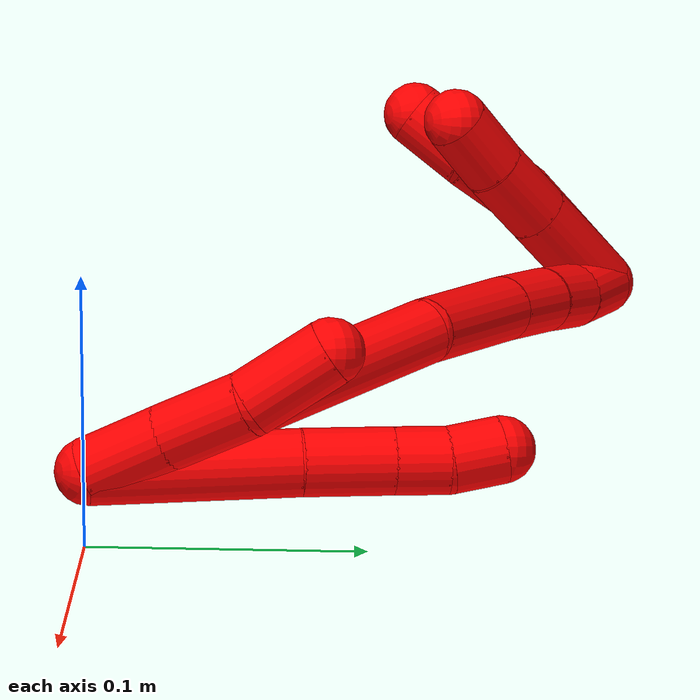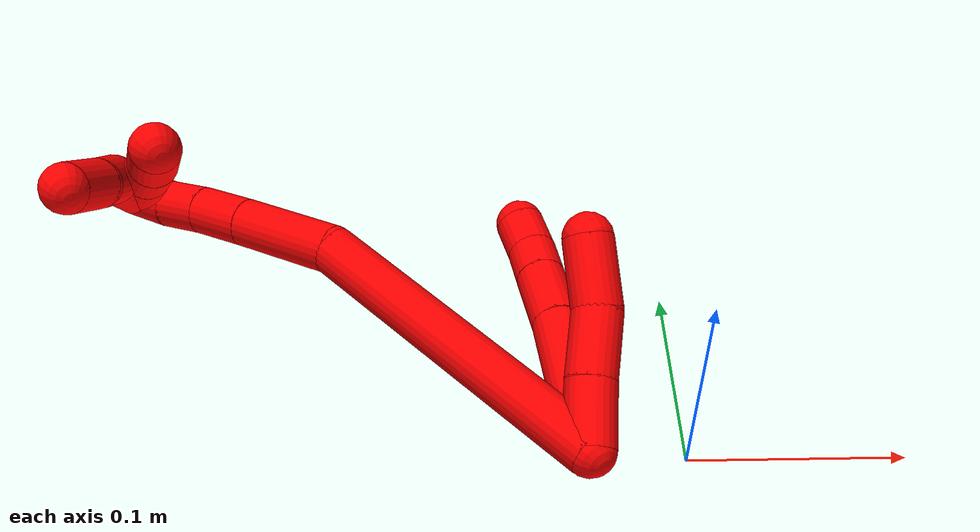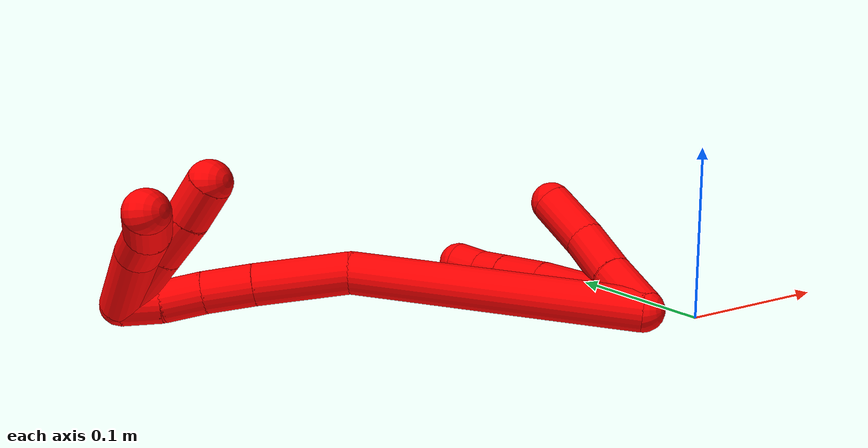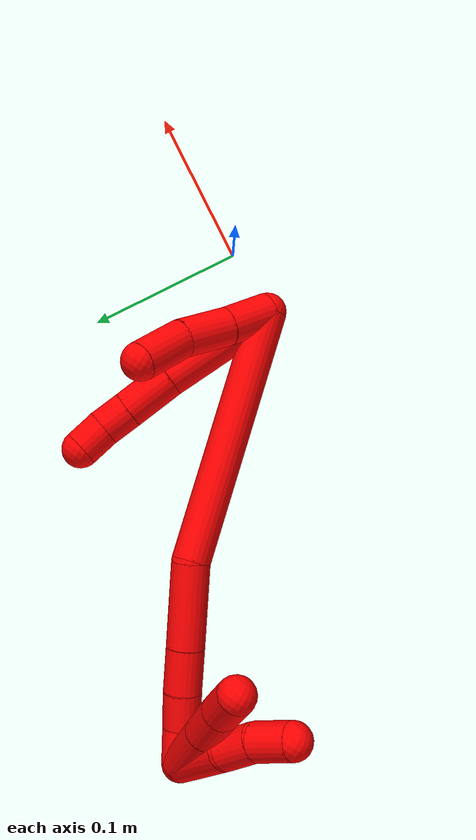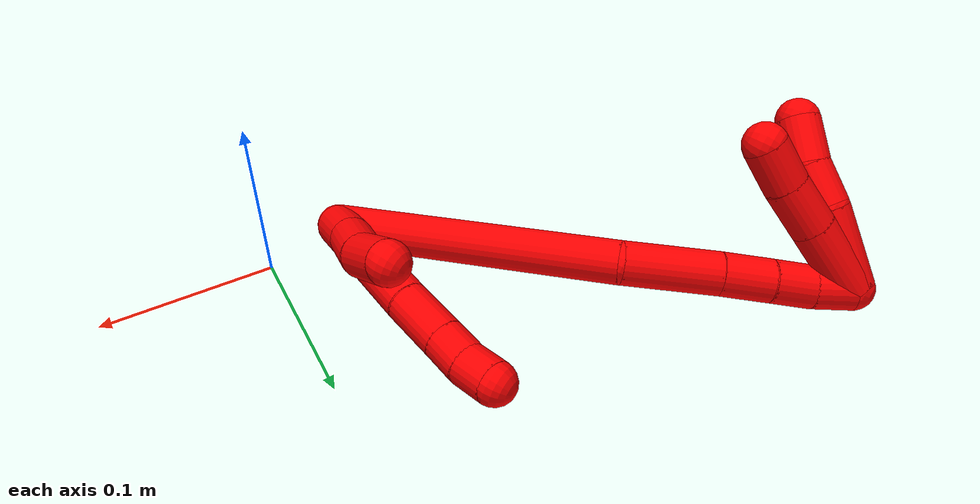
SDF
<sdf version="1.7">
 <world name="default">
  <model name="2">
   <static>0</static>
   <link name="2">
    <collision name="collision-cylinder-e_1_2_8">
     <pose>0.009482 -0.011724 0.035226 0.3213 0.250046 0.040726</pose>
     <geometry><cylinder><radius>0.0125</radius><length>0.076635</length></cylinder></geometry>
     <surface>
      <friction><ode><mu>1.16</mu><mu2>1.16</mu2><slip1>0</slip1><slip2>0</slip2></ode></friction>
      <contact><ode><kp>1e+06</kp><kd>1</kd><max_vel>0</max_vel><min_depth>0.001</min_depth></ode></contact>
     </surface>
    </collision>
    <visual name="visual-cylinder-e_1_2_8">
     <pose>0.009482 -0.011724 0.035226 0.3213 0.250046 0.040726</pose>
     <geometry><cylinder><radius>0.0125</radius><length>0.076635</length></cylinder></geometry>
     <material><ambient>1 0 0 1</ambient></material>
    </visual>
    <collision name="collision-cylinder-e_2_8_9">
     <pose>0.02268 -0.027467 0.086206 0.249756 0.224755 0.028331</pose>
     <geometry><cylinder><radius>0.0125</radius><length>0.033357</length></cylinder></geometry>
     <surface>
      <friction><ode><mu>1.16</mu><mu2>1.16</mu2><slip1>0</slip1><slip2>0</slip2></ode></friction>
      <contact><ode><kp>1e+06</kp><kd>1</kd><max_vel>0</max_vel><min_depth>0.001</min_depth></ode></contact>
     </surface>
    </collision>
    <visual name="visual-cylinder-e_2_8_9">
     <pose>0.02268 -0.027467 0.086206 0.249756 0.224755 0.028331</pose>
     <geometry><cylinder><radius>0.0125</radius><length>0.033357</length></cylinder></geometry>
     <material><ambient>1 0 0 1</ambient></material>
    </visual>
    <collision name="collision-cylinder-e_3_9_10">
     <pose>0.028755 -0.033928 0.111369 0.253898 0.237985 0.030517</pose>
     <geometry><cylinder><radius>0.0125</radius><length>0.020004</length></cylinder></geometry>
     <surface>
      <friction><ode><mu>1.16</mu><mu2>1.16</mu2><slip1>0</slip1><slip2>0</slip2></ode></friction>
      <contact><ode><kp>1e+06</kp><kd>1</kd><max_vel>0</max_vel><min_depth>0.001</min_depth></ode></contact>
     </surface>
    </collision>
    <visual name="visual-cylinder-e_3_9_10">
     <pose>0.028755 -0.033928 0.111369 0.253898 0.237985 0.030517</pose>
     <geometry><cylinder><radius>0.0125</radius><length>0.020004</length></cylinder></geometry>
     <material><ambient>1 0 0 1</ambient></material>
    </visual>
    <collision name="collision-cylinder-e_4_10_6">
     <pose>0.031689 -0.039571 0.130236 0.32647 0.057624 0.009493</pose>
     <geometry><cylinder><radius>0.0125</radius><length>0.020004</length></cylinder></geometry>
     <surface>
      <friction><ode><mu>1.16</mu><mu2>1.16</mu2><slip1>0</slip1><slip2>0</slip2></ode></friction>
      <contact><ode><kp>1e+06</kp><kd>1</kd><max_vel>0</max_vel><min_depth>0.001</min_depth></ode></contact>
     </surface>
    </collision>
    <visual name="visual-cylinder-e_4_10_6">
     <pose>0.031689 -0.039571 0.130236 0.32647 0.057624 0.009493</pose>
     <geometry><cylinder><radius>0.0125</radius><length>0.020004</length></cylinder></geometry>
     <material><ambient>1 0 0 1</ambient></material>
    </visual>
    <collision name="collision-cylinder-e_1_2_11">
     <pose>0.002121 -0.011252 0.010967 0.79825 0.134158 0.056653</pose>
     <geometry><cylinder><radius>0.0125</radius><length>0.03171</length></cylinder></geometry>
     <surface>
      <friction><ode><mu>1.16</mu><mu2>1.16</mu2><slip1>0</slip1><slip2>0</slip2></ode></friction>
      <contact><ode><kp>1e+06</kp><kd>1</kd><max_vel>0</max_vel><min_depth>0.001</min_depth></ode></contact>
     </surface>
    </collision>
    <visual name="visual-cylinder-e_1_2_11">
     <pose>0.002121 -0.011252 0.010967 0.79825 0.134158 0.056653</pose>
     <geometry><cylinder><radius>0.0125</radius><length>0.03171</length></cylinder></geometry>
     <material><ambient>1 0 0 1</ambient></material>
    </visual>
    <collision name="collision-cylinder-e_2_11_12">
     <pose>0.00741 -0.034859 0.032828 0.848086 0.190067 0.086008</pose>
     <geometry><cylinder><radius>0.0125</radius><length>0.033548</length></cylinder></geometry>
     <surface>
      <friction><ode><mu>1.16</mu><mu2>1.16</mu2><slip1>0</slip1><slip2>0</slip2></ode></friction>
      <contact><ode><kp>1e+06</kp><kd>1</kd><max_vel>0</max_vel><min_depth>0.001</min_depth></ode></contact>
     </surface>
    </collision>
    <visual name="visual-cylinder-e_2_11_12">
     <pose>0.00741 -0.034859 0.032828 0.848086 0.190067 0.086008</pose>
     <geometry><cylinder><radius>0.0125</radius><length>0.033548</length></cylinder></geometry>
     <material><ambient>1 0 0 1</ambient></material>
    </visual>
    <collision name="collision-cylinder-e_3_12_5">
     <pose>0.009594 -0.059558 0.055905 0.792055 -0.056738 -0.023728</pose>
     <geometry><cylinder><radius>0.0125</radius><length>0.034742</length></cylinder></geometry>
     <surface>
      <friction><ode><mu>1.16</mu><mu2>1.16</mu2><slip1>0</slip1><slip2>0</slip2></ode></friction>
      <contact><ode><kp>1e+06</kp><kd>1</kd><max_vel>0</max_vel><min_depth>0.001</min_depth></ode></contact>
     </surface>
    </collision>
    <visual name="visual-cylinder-e_3_12_5">
     <pose>0.009594 -0.059558 0.055905 0.792055 -0.056738 -0.023728</pose>
     <geometry><cylinder><radius>0.0125</radius><length>0.034742</length></cylinder></geometry>
     <material><ambient>1 0 0 1</ambient></material>
    </visual>
    <collision name="collision-cylinder-e_1_2_13">
     <pose>-0.029873 -0.001569 0.078758 0.019919 -0.362476 -0.00365</pose>
     <geometry><cylinder><radius>0.0125</radius><length>0.168496</length></cylinder></geometry>
     <surface>
      <friction><ode><mu>1.16</mu><mu2>1.16</mu2><slip1>0</slip1><slip2>0</slip2></ode></friction>
      <contact><ode><kp>1e+06</kp><kd>1</kd><max_vel>0</max_vel><min_depth>0.001</min_depth></ode></contact>
     </surface>
    </collision>
    <visual name="visual-cylinder-e_1_2_13">
     <pose>-0.029873 -0.001569 0.078758 0.019919 -0.362476 -0.00365</pose>
     <geometry><cylinder><radius>0.0125</radius><length>0.168496</length></cylinder></geometry>
     <material><ambient>1 0 0 1</ambient></material>
    </visual>
    <collision name="collision-cylinder-e_2_13_14">
     <pose>-0.071434 0.004335 0.181444 -0.30272 -0.436276 0.067594</pose>
     <geometry><cylinder><radius>0.0125</radius><length>0.055316</length></cylinder></geometry>
     <surface>
      <friction><ode><mu>1.16</mu><mu2>1.16</mu2><slip1>0</slip1><slip2>0</slip2></ode></friction>
      <contact><ode><kp>1e+06</kp><kd>1</kd><max_vel>0</max_vel><min_depth>0.001</min_depth></ode></contact>
     </surface>
    </collision>
    <visual name="visual-cylinder-e_2_13_14">
     <pose>-0.071434 0.004335 0.181444 -0.30272 -0.436276 0.067594</pose>
     <geometry><cylinder><radius>0.0125</radius><length>0.055316</length></cylinder></geometry>
     <material><ambient>1 0 0 1</ambient></material>
    </visual>
    <collision name="collision-cylinder-e_3_14_15">
     <pose>-0.088882 0.016074 0.217928 -0.327519 -0.409746 0.068643</pose>
     <geometry><cylinder><radius>0.0125</radius><length>0.028918</length></cylinder></geometry>
     <surface>
      <friction><ode><mu>1.16</mu><mu2>1.16</mu2><slip1>0</slip1><slip2>0</slip2></ode></friction>
      <contact><ode><kp>1e+06</kp><kd>1</kd><max_vel>0</max_vel><min_depth>0.001</min_depth></ode></contact>
     </surface>
    </collision>
    <visual name="visual-cylinder-e_3_14_15">
     <pose>-0.088882 0.016074 0.217928 -0.327519 -0.409746 0.068643</pose>
     <geometry><cylinder><radius>0.0125</radius><length>0.028918</length></cylinder></geometry>
     <material><ambient>1 0 0 1</ambient></material>
    </visual>
    <collision name="collision-cylinder-e_4_15_16">
     <pose>-0.099463 0.024694 0.24064 -0.40503 -0.411485 0.08565</pose>
     <geometry><cylinder><radius>0.0125</radius><length>0.024109</length></cylinder></geometry>
     <surface>
      <friction><ode><mu>1.16</mu><mu2>1.16</mu2><slip1>0</slip1><slip2>0</slip2></ode></friction>
      <contact><ode><kp>1e+06</kp><kd>1</kd><max_vel>0</max_vel><min_depth>0.001</min_depth></ode></contact>
     </surface>
    </collision>
    <visual name="visual-cylinder-e_4_15_16">
     <pose>-0.099463 0.024694 0.24064 -0.40503 -0.411485 0.08565</pose>
     <geometry><cylinder><radius>0.0125</radius><length>0.024109</length></cylinder></geometry>
     <material><ambient>1 0 0 1</ambient></material>
    </visual>
    <collision name="collision-cylinder-e_5_16_1">
     <pose>-0.109905 0.031711 0.260563 -0.266115 -0.506695 0.069282</pose>
     <geometry><cylinder><radius>0.0125</radius><length>0.023161</length></cylinder></geometry>
     <surface>
      <friction><ode><mu>1.16</mu><mu2>1.16</mu2><slip1>0</slip1><slip2>0</slip2></ode></friction>
      <contact><ode><kp>1e+06</kp><kd>1</kd><max_vel>0</max_vel><min_depth>0.001</min_depth></ode></contact>
     </surface>
    </collision>
    <visual name="visual-cylinder-e_5_16_1">
     <pose>-0.109905 0.031711 0.260563 -0.266115 -0.506695 0.069282</pose>
     <geometry><cylinder><radius>0.0125</radius><length>0.023161</length></cylinder></geometry>
     <material><ambient>1 0 0 1</ambient></material>
    </visual>
    <collision name="collision-cylinder-e_1_1_17">
     <pose>-0.130122 0.024381 0.254142 2.58861 -0.654459 -1.749</pose>
     <geometry><cylinder><radius>0.0125</radius><length>0.047961</length></cylinder></geometry>
     <surface>
      <friction><ode><mu>1.16</mu><mu2>1.16</mu2><slip1>0</slip1><slip2>0</slip2></ode></friction>
      <contact><ode><kp>1e+06</kp><kd>1</kd><max_vel>0</max_vel><min_depth>0.001</min_depth></ode></contact>
     </surface>
    </collision>
    <visual name="visual-cylinder-e_1_1_17">
     <pose>-0.130122 0.024381 0.254142 2.58861 -0.654459 -1.749</pose>
     <geometry><cylinder><radius>0.0125</radius><length>0.047961</length></cylinder></geometry>
     <material><ambient>1 0 0 1</ambient></material>
    </visual>
    <collision name="collision-cylinder-e_2_17_18">
     <pose>-0.152408 0.011927 0.228214 2.89402 -0.65327 -2.43761</pose>
     <geometry><cylinder><radius>0.0125</radius><length>0.025299</length></cylinder></geometry>
     <surface>
      <friction><ode><mu>1.16</mu><mu2>1.16</mu2><slip1>0</slip1><slip2>0</slip2></ode></friction>
      <contact><ode><kp>1e+06</kp><kd>1</kd><max_vel>0</max_vel><min_depth>0.001</min_depth></ode></contact>
     </surface>
    </collision>
    <visual name="visual-cylinder-e_2_17_18">
     <pose>-0.152408 0.011927 0.228214 2.89402 -0.65327 -2.43761</pose>
     <geometry><cylinder><radius>0.0125</radius><length>0.025299</length></cylinder></geometry>
     <material><ambient>1 0 0 1</ambient></material>
    </visual>
    <collision name="collision-cylinder-e_3_18_4">
     <pose>-0.170384 0.008175 0.210033 2.98996 -0.877991 -2.82083</pose>
     <geometry><cylinder><radius>0.0125</radius><length>0.026741</length></cylinder></geometry>
     <surface>
      <friction><ode><mu>1.16</mu><mu2>1.16</mu2><slip1>0</slip1><slip2>0</slip2></ode></friction>
      <contact><ode><kp>1e+06</kp><kd>1</kd><max_vel>0</max_vel><min_depth>0.001</min_depth></ode></contact>
     </surface>
    </collision>
    <visual name="visual-cylinder-e_3_18_4">
     <pose>-0.170384 0.008175 0.210033 2.98996 -0.877991 -2.82083</pose>
     <geometry><cylinder><radius>0.0125</radius><length>0.026741</length></cylinder></geometry>
     <material><ambient>1 0 0 1</ambient></material>
    </visual>
    <collision name="collision-cylinder-e_1_1_19">
     <pose>-0.122558 0.021478 0.25333 2.49269 -0.318385 -0.890731</pose>
     <geometry><cylinder><radius>0.0125</radius><length>0.044937</length></cylinder></geometry>
     <surface>
      <friction><ode><mu>1.16</mu><mu2>1.16</mu2><slip1>0</slip1><slip2>0</slip2></ode></friction>
      <contact><ode><kp>1e+06</kp><kd>1</kd><max_vel>0</max_vel><min_depth>0.001</min_depth></ode></contact>
     </surface>
    </collision>
    <visual name="visual-cylinder-e_1_1_19">
     <pose>-0.122558 0.021478 0.25333 2.49269 -0.318385 -0.890731</pose>
     <geometry><cylinder><radius>0.0125</radius><length>0.044937</length></cylinder></geometry>
     <material><ambient>1 0 0 1</ambient></material>
    </visual>
    <collision name="collision-cylinder-e_2_19_20">
     <pose>-0.134135 0.000228 0.225256 2.4952 -0.316578 -0.889467</pose>
     <geometry><cylinder><radius>0.0125</radius><length>0.029192</length></cylinder></geometry>
     <surface>
      <friction><ode><mu>1.16</mu><mu2>1.16</mu2><slip1>0</slip1><slip2>0</slip2></ode></friction>
      <contact><ode><kp>1e+06</kp><kd>1</kd><max_vel>0</max_vel><min_depth>0.001</min_depth></ode></contact>
     </surface>
    </collision>
    <visual name="visual-cylinder-e_2_19_20">
     <pose>-0.134135 0.000228 0.225256 2.4952 -0.316578 -0.889467</pose>
     <geometry><cylinder><radius>0.0125</radius><length>0.029192</length></cylinder></geometry>
     <material><ambient>1 0 0 1</ambient></material>
    </visual>
    <collision name="collision-cylinder-e_3_20_3">
     <pose>-0.143517 -0.015808 0.204968 2.44675 -0.383291 -0.983791</pose>
     <geometry><cylinder><radius>0.0125</radius><length>0.025871</length></cylinder></geometry>
     <surface>
      <friction><ode><mu>1.16</mu><mu2>1.16</mu2><slip1>0</slip1><slip2>0</slip2></ode></friction>
      <contact><ode><kp>1e+06</kp><kd>1</kd><max_vel>0</max_vel><min_depth>0.001</min_depth></ode></contact>
     </surface>
    </collision>
    <visual name="visual-cylinder-e_3_20_3">
     <pose>-0.143517 -0.015808 0.204968 2.44675 -0.383291 -0.983791</pose>
     <geometry><cylinder><radius>0.0125</radius><length>0.025871</length></cylinder></geometry>
     <material><ambient>1 0 0 1</ambient></material>
    </visual>
    <collision name="collision-sphere-3">
     <pose>-0.148354 -0.023489 0.195752 0 -0 0</pose>
     <geometry><sphere><radius>0.0125</radius></sphere></geometry>
     <surface>
      <friction><ode><mu>1.16</mu><mu2>1.16</mu2><slip1>0</slip1><slip2>0</slip2></ode></friction>
      <contact><ode><kp>1e+06</kp><kd>1</kd><max_vel>0</max_vel><min_depth>0.001</min_depth></ode></contact>
     </surface>
    </collision>
    <visual name="visual-sphere-3">
     <pose>-0.148354 -0.023489 0.195752 0 -0 0</pose>
     <geometry><sphere><radius>0.0125</radius></sphere></geometry>
     <material><ambient>1 0 0 1</ambient></material>
    </visual>
    <collision name="collision-sphere-20">
     <pose>-0.138679 -0.008127 0.214183 0 -0 0</pose>
     <geometry><sphere><radius>0.0125</radius></sphere></geometry>
     <surface>
      <friction><ode><mu>1.16</mu><mu2>1.16</mu2><slip1>0</slip1><slip2>0</slip2></ode></friction>
      <contact><ode><kp>1e+06</kp><kd>1</kd><max_vel>0</max_vel><min_depth>0.001</min_depth></ode></contact>
     </surface>
    </collision>
    <visual name="visual-sphere-20">
     <pose>-0.138679 -0.008127 0.214183 0 -0 0</pose>
     <geometry><sphere><radius>0.0125</radius></sphere></geometry>
     <material><ambient>1 0 0 1</ambient></material>
    </visual>
    <collision name="collision-sphere-19">
     <pose>-0.129591 0.008582 0.236328 0 -0 0</pose>
     <geometry><sphere><radius>0.0125</radius></sphere></geometry>
     <surface>
      <friction><ode><mu>1.16</mu><mu2>1.16</mu2><slip1>0</slip1><slip2>0</slip2></ode></friction>
      <contact><ode><kp>1e+06</kp><kd>1</kd><max_vel>0</max_vel><min_depth>0.001</min_depth></ode></contact>
     </surface>
    </collision>
    <visual name="visual-sphere-19">
     <pose>-0.129591 0.008582 0.236328 0 -0 0</pose>
     <geometry><sphere><radius>0.0125</radius></sphere></geometry>
     <material><ambient>1 0 0 1</ambient></material>
    </visual>
    <collision name="collision-sphere-11">
     <pose>0.004241 -0.022505 0.021933 0 -0 0</pose>
     <geometry><sphere><radius>0.0125</radius></sphere></geometry>
     <surface>
      <friction><ode><mu>1.16</mu><mu2>1.16</mu2><slip1>0</slip1><slip2>0</slip2></ode></friction>
      <contact><ode><kp>1e+06</kp><kd>1</kd><max_vel>0</max_vel><min_depth>0.001</min_depth></ode></contact>
     </surface>
    </collision>
    <visual name="visual-sphere-11">
     <pose>0.004241 -0.022505 0.021933 0 -0 0</pose>
     <geometry><sphere><radius>0.0125</radius></sphere></geometry>
     <material><ambient>1 0 0 1</ambient></material>
    </visual>
    <collision name="collision-sphere-6">
     <pose>0.032265 -0.042774 0.139694 0 -0 0</pose>
     <geometry><sphere><radius>0.0125</radius></sphere></geometry>
     <surface>
      <friction><ode><mu>1.16</mu><mu2>1.16</mu2><slip1>0</slip1><slip2>0</slip2></ode></friction>
      <contact><ode><kp>1e+06</kp><kd>1</kd><max_vel>0</max_vel><min_depth>0.001</min_depth></ode></contact>
     </surface>
    </collision>
    <visual name="visual-sphere-6">
     <pose>0.032265 -0.042774 0.139694 0 -0 0</pose>
     <geometry><sphere><radius>0.0125</radius></sphere></geometry>
     <material><ambient>1 0 0 1</ambient></material>
    </visual>
    <collision name="collision-sphere-10">
     <pose>0.031113 -0.036369 0.120778 0 -0 0</pose>
     <geometry><sphere><radius>0.0125</radius></sphere></geometry>
     <surface>
      <friction><ode><mu>1.16</mu><mu2>1.16</mu2><slip1>0</slip1><slip2>0</slip2></ode></friction>
      <contact><ode><kp>1e+06</kp><kd>1</kd><max_vel>0</max_vel><min_depth>0.001</min_depth></ode></contact>
     </surface>
    </collision>
    <visual name="visual-sphere-10">
     <pose>0.031113 -0.036369 0.120778 0 -0 0</pose>
     <geometry><sphere><radius>0.0125</radius></sphere></geometry>
     <material><ambient>1 0 0 1</ambient></material>
    </visual>
    <collision name="collision-sphere-9">
     <pose>0.026397 -0.031486 0.101961 0 -0 0</pose>
     <geometry><sphere><radius>0.0125</radius></sphere></geometry>
     <surface>
      <friction><ode><mu>1.16</mu><mu2>1.16</mu2><slip1>0</slip1><slip2>0</slip2></ode></friction>
      <contact><ode><kp>1e+06</kp><kd>1</kd><max_vel>0</max_vel><min_depth>0.001</min_depth></ode></contact>
     </surface>
    </collision>
    <visual name="visual-sphere-9">
     <pose>0.026397 -0.031486 0.101961 0 -0 0</pose>
     <geometry><sphere><radius>0.0125</radius></sphere></geometry>
     <material><ambient>1 0 0 1</ambient></material>
    </visual>
    <collision name="collision-sphere-2">
     <geometry><sphere><radius>0.0125</radius></sphere></geometry>
     <surface>
      <friction><ode><mu>1.16</mu><mu2>1.16</mu2><slip1>0</slip1><slip2>0</slip2></ode></friction>
      <contact><ode><kp>1e+06</kp><kd>1</kd><max_vel>0</max_vel><min_depth>0.001</min_depth></ode></contact>
     </surface>
    </collision>
    <visual name="visual-sphere-2">
     <geometry><sphere><radius>0.0125</radius></sphere></geometry>
     <material><ambient>1 0 0 1</ambient></material>
    </visual>
    <collision name="collision-sphere-8">
     <pose>0.018963 -0.023449 0.070452 0 -0 0</pose>
     <geometry><sphere><radius>0.0125</radius></sphere></geometry>
     <surface>
      <friction><ode><mu>1.16</mu><mu2>1.16</mu2><slip1>0</slip1><slip2>0</slip2></ode></friction>
      <contact><ode><kp>1e+06</kp><kd>1</kd><max_vel>0</max_vel><min_depth>0.001</min_depth></ode></contact>
     </surface>
    </collision>
    <visual name="visual-sphere-8">
     <pose>0.018963 -0.023449 0.070452 0 -0 0</pose>
     <geometry><sphere><radius>0.0125</radius></sphere></geometry>
     <material><ambient>1 0 0 1</ambient></material>
    </visual>
    <collision name="collision-sphere-12">
     <pose>0.010579 -0.047213 0.043723 0 -0 0</pose>
     <geometry><sphere><radius>0.0125</radius></sphere></geometry>
     <surface>
      <friction><ode><mu>1.16</mu><mu2>1.16</mu2><slip1>0</slip1><slip2>0</slip2></ode></friction>
      <contact><ode><kp>1e+06</kp><kd>1</kd><max_vel>0</max_vel><min_depth>0.001</min_depth></ode></contact>
     </surface>
    </collision>
    <visual name="visual-sphere-12">
     <pose>0.010579 -0.047213 0.043723 0 -0 0</pose>
     <geometry><sphere><radius>0.0125</radius></sphere></geometry>
     <material><ambient>1 0 0 1</ambient></material>
    </visual>
    <collision name="collision-sphere-5">
     <pose>0.008609 -0.071903 0.068086 0 -0 0</pose>
     <geometry><sphere><radius>0.0125</radius></sphere></geometry>
     <surface>
      <friction><ode><mu>1.16</mu><mu2>1.16</mu2><slip1>0</slip1><slip2>0</slip2></ode></friction>
      <contact><ode><kp>1e+06</kp><kd>1</kd><max_vel>0</max_vel><min_depth>0.001</min_depth></ode></contact>
     </surface>
    </collision>
    <visual name="visual-sphere-5">
     <pose>0.008609 -0.071903 0.068086 0 -0 0</pose>
     <geometry><sphere><radius>0.0125</radius></sphere></geometry>
     <material><ambient>1 0 0 1</ambient></material>
    </visual>
    <collision name="collision-sphere-13">
     <pose>-0.059747 -0.003138 0.157516 0 -0 0</pose>
     <geometry><sphere><radius>0.0125</radius></sphere></geometry>
     <surface>
      <friction><ode><mu>1.16</mu><mu2>1.16</mu2><slip1>0</slip1><slip2>0</slip2></ode></friction>
      <contact><ode><kp>1e+06</kp><kd>1</kd><max_vel>0</max_vel><min_depth>0.001</min_depth></ode></contact>
     </surface>
    </collision>
    <visual name="visual-sphere-13">
     <pose>-0.059747 -0.003138 0.157516 0 -0 0</pose>
     <geometry><sphere><radius>0.0125</radius></sphere></geometry>
     <material><ambient>1 0 0 1</ambient></material>
    </visual>
    <collision name="collision-sphere-14">
     <pose>-0.083122 0.011808 0.205371 0 -0 0</pose>
     <geometry><sphere><radius>0.0125</radius></sphere></geometry>
     <surface>
      <friction><ode><mu>1.16</mu><mu2>1.16</mu2><slip1>0</slip1><slip2>0</slip2></ode></friction>
      <contact><ode><kp>1e+06</kp><kd>1</kd><max_vel>0</max_vel><min_depth>0.001</min_depth></ode></contact>
     </surface>
    </collision>
    <visual name="visual-sphere-14">
     <pose>-0.083122 0.011808 0.205371 0 -0 0</pose>
     <geometry><sphere><radius>0.0125</radius></sphere></geometry>
     <material><ambient>1 0 0 1</ambient></material>
    </visual>
    <collision name="collision-sphere-15">
     <pose>-0.094642 0.020341 0.230485 0 -0 0</pose>
     <geometry><sphere><radius>0.0125</radius></sphere></geometry>
     <surface>
      <friction><ode><mu>1.16</mu><mu2>1.16</mu2><slip1>0</slip1><slip2>0</slip2></ode></friction>
      <contact><ode><kp>1e+06</kp><kd>1</kd><max_vel>0</max_vel><min_depth>0.001</min_depth></ode></contact>
     </surface>
    </collision>
    <visual name="visual-sphere-15">
     <pose>-0.094642 0.020341 0.230485 0 -0 0</pose>
     <geometry><sphere><radius>0.0125</radius></sphere></geometry>
     <material><ambient>1 0 0 1</ambient></material>
    </visual>
    <collision name="collision-sphere-16">
     <pose>-0.104285 0.029048 0.250794 0 -0 0</pose>
     <geometry><sphere><radius>0.0125</radius></sphere></geometry>
     <surface>
      <friction><ode><mu>1.16</mu><mu2>1.16</mu2><slip1>0</slip1><slip2>0</slip2></ode></friction>
      <contact><ode><kp>1e+06</kp><kd>1</kd><max_vel>0</max_vel><min_depth>0.001</min_depth></ode></contact>
     </surface>
    </collision>
    <visual name="visual-sphere-16">
     <pose>-0.104285 0.029048 0.250794 0 -0 0</pose>
     <geometry><sphere><radius>0.0125</radius></sphere></geometry>
     <material><ambient>1 0 0 1</ambient></material>
    </visual>
    <collision name="collision-sphere-1">
     <pose>-0.115525 0.034374 0.270332 0 -0 0</pose>
     <geometry><sphere><radius>0.0125</radius></sphere></geometry>
     <surface>
      <friction><ode><mu>1.16</mu><mu2>1.16</mu2><slip1>0</slip1><slip2>0</slip2></ode></friction>
      <contact><ode><kp>1e+06</kp><kd>1</kd><max_vel>0</max_vel><min_depth>0.001</min_depth></ode></contact>
     </surface>
    </collision>
    <visual name="visual-sphere-1">
     <pose>-0.115525 0.034374 0.270332 0 -0 0</pose>
     <geometry><sphere><radius>0.0125</radius></sphere></geometry>
     <material><ambient>1 0 0 1</ambient></material>
    </visual>
    <collision name="collision-sphere-18">
     <pose>-0.160096 0.009465 0.218475 0 -0 0</pose>
     <geometry><sphere><radius>0.0125</radius></sphere></geometry>
     <surface>
      <friction><ode><mu>1.16</mu><mu2>1.16</mu2><slip1>0</slip1><slip2>0</slip2></ode></friction>
      <contact><ode><kp>1e+06</kp><kd>1</kd><max_vel>0</max_vel><min_depth>0.001</min_depth></ode></contact>
     </surface>
    </collision>
    <visual name="visual-sphere-18">
     <pose>-0.160096 0.009465 0.218475 0 -0 0</pose>
     <geometry><sphere><radius>0.0125</radius></sphere></geometry>
     <material><ambient>1 0 0 1</ambient></material>
    </visual>
    <collision name="collision-sphere-17">
     <pose>-0.14472 0.014388 0.237952 0 -0 0</pose>
     <geometry><sphere><radius>0.0125</radius></sphere></geometry>
     <surface>
      <friction><ode><mu>1.16</mu><mu2>1.16</mu2><slip1>0</slip1><slip2>0</slip2></ode></friction>
      <contact><ode><kp>1e+06</kp><kd>1</kd><max_vel>0</max_vel><min_depth>0.001</min_depth></ode></contact>
     </surface>
    </collision>
    <visual name="visual-sphere-17">
     <pose>-0.14472 0.014388 0.237952 0 -0 0</pose>
     <geometry><sphere><radius>0.0125</radius></sphere></geometry>
     <material><ambient>1 0 0 1</ambient></material>
    </visual>
    <collision name="collision-sphere-4">
     <pose>-0.180672 0.006885 0.201592 0 -0 0</pose>
     <geometry><sphere><radius>0.0125</radius></sphere></geometry>
     <surface>
      <friction><ode><mu>1.16</mu><mu2>1.16</mu2><slip1>0</slip1><slip2>0</slip2></ode></friction>
      <contact><ode><kp>1e+06</kp><kd>1</kd><max_vel>0</max_vel><min_depth>0.001</min_depth></ode></contact>
     </surface>
    </collision>
    <visual name="visual-sphere-4">
     <pose>-0.180672 0.006885 0.201592 0 -0 0</pose>
     <geometry><sphere><radius>0.0125</radius></sphere></geometry>
     <material><ambient>1 0 0 1</ambient></material>
    </visual>
    <inertial>
     <pose>-0.054595 -0.00381 0.136115 0 -0 0</pose>
     <mass>0.75</mass>
     <inertia>
      <ixx>0.000431</ixx>
      <ixy>0</ixy>
      <ixz>0</ixz>
      <iyy>0.000455</iyy>
      <iyz>0</iyz>
      <izz>0.000221</izz>
     </inertia>
    </inertial>
   </link>
   <pose>-0.044591 -0.002521 0.012498 -1.71412 0.555634 0.43707</pose>
  </model>
 </world>
</sdf>
